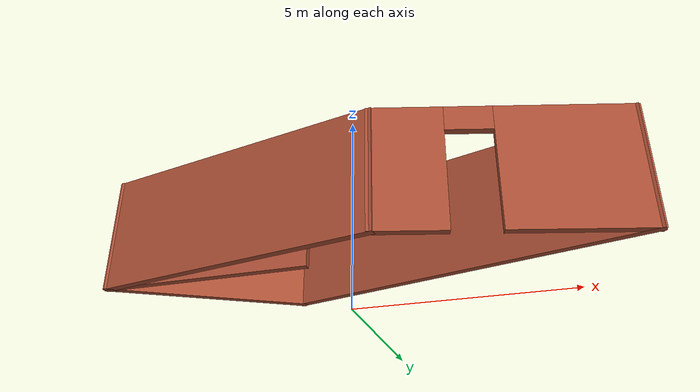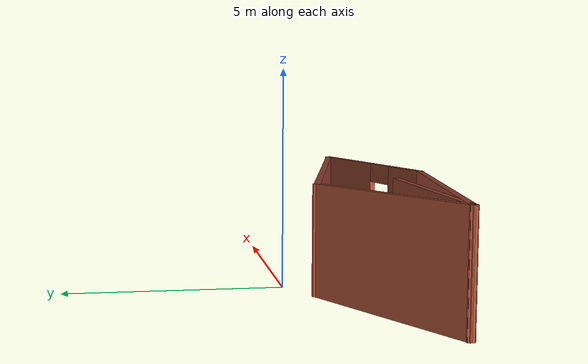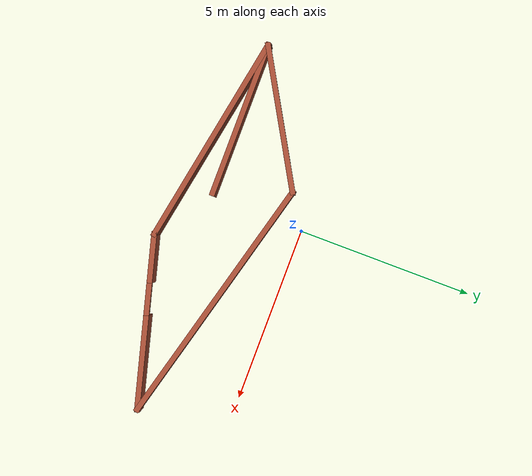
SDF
<?xml version='1.0'?>
<sdf version='1.7'>
  <model name='my_world.world'>
    <pose>0.839832 -1.92472 0 0 -0 0</pose>
    <link name='Wall_0'>
      <collision name='Wall_0_Collision'>
        <geometry>
          <box>
            <size>4.25 0.15 2.5</size>
          </box>
        </geometry>
        <pose>0 0 1.25 0 -0 0</pose>
      </collision>
      <visual name='Wall_0_Visual'>
        <pose>0 0 1.25 0 -0 0</pose>
        <geometry>
          <box>
            <size>4.25 0.15 2.5</size>
          </box>
        </geometry>
        <material>
          <script>
            <uri>file://media/materials/scripts/gazebo.material</uri>
            <name>Gazebo/Bricks</name>
          </script>
          <ambient>1 1 1 1</ambient>
        </material>
        <meta>
          <layer>0</layer>
        </meta>
      </visual>
      <pose>-3.54448 0.299724 0 0 -0 0.523599</pose>
    </link>
    <link name='Wall_1'>
      <collision name='Wall_1_Collision'>
        <geometry>
          <box>
            <size>7.5 0.15 2.5</size>
          </box>
        </geometry>
        <pose>0 0 1.25 0 -0 0</pose>
      </collision>
      <visual name='Wall_1_Visual'>
        <pose>0 0 1.25 0 -0 0</pose>
        <geometry>
          <box>
            <size>7.5 0.15 2.5</size>
          </box>
        </geometry>
        <material>
          <script>
            <uri>file://media/materials/scripts/gazebo.material</uri>
            <name>Gazebo/Bricks</name>
          </script>
          <ambient>1 1 1 1</ambient>
        </material>
        <meta>
          <layer>0</layer>
        </meta>
      </visual>
      <pose>1.78065 0.373564 0 0 -0 -0.261799</pose>
    </link>
    <link name='Wall_2'>
      <pose>2.98806 -1.20523 0 0 -0 -2.87979</pose>
      <visual name='Wall_2_Visual_0'>
        <pose>-1.16458 0 1.25 0 -0 0</pose>
        <geometry>
          <box>
            <size>2.67083 0.15 2.5</size>
          </box>
        </geometry>
        <material>
          <script>
            <uri>file://media/materials/scripts/gazebo.material</uri>
            <name>Gazebo/Bricks</name>
          </script>
          <ambient>1 1 1 1</ambient>
        </material>
        <meta>
          <layer>0</layer>
        </meta>
      </visual>
      <collision name='Wall_2_Collision_0'>
        <geometry>
          <box>
            <size>2.67083 0.15 2.5</size>
          </box>
        </geometry>
        <pose>-1.16458 0 1.25 0 -0 0</pose>
      </collision>
      <visual name='Wall_2_Visual_1'>
        <pose>1.78542 0 1.25 0 -0 0</pose>
        <geometry>
          <box>
            <size>1.42917 0.15 2.5</size>
          </box>
        </geometry>
        <material>
          <script>
            <uri>file://media/materials/scripts/gazebo.material</uri>
            <name>Gazebo/Bricks</name>
          </script>
          <ambient>1 1 1 1</ambient>
        </material>
        <meta>
          <layer>0</layer>
        </meta>
      </visual>
      <collision name='Wall_2_Collision_1'>
        <geometry>
          <box>
            <size>1.42917 0.15 2.5</size>
          </box>
        </geometry>
        <pose>1.78542 0 1.25 0 -0 0</pose>
      </collision>
      <visual name='Wall_2_Visual_2'>
        <pose>0.620833 0 2.25 0 -0 0</pose>
        <geometry>
          <box>
            <size>0.9 0.15 0.5</size>
          </box>
        </geometry>
        <material>
          <script>
            <uri>file://media/materials/scripts/gazebo.material</uri>
            <name>Gazebo/Bricks</name>
          </script>
          <ambient>1 1 1 1</ambient>
        </material>
        <meta>
          <layer>0</layer>
        </meta>
      </visual>
      <collision name='Wall_2_Collision_2'>
        <geometry>
          <box>
            <size>0.9 0.15 0.5</size>
          </box>
        </geometry>
        <pose>0.620833 0 2.25 0 -0 0</pose>
      </collision>
    </link>
    <link name='Wall_3'>
      <collision name='Wall_3_Collision'>
        <geometry>
          <box>
            <size>6.21747 0.15 2.5</size>
          </box>
        </geometry>
        <pose>0 0 1.25 0 -0 0</pose>
      </collision>
      <visual name='Wall_3_Visual'>
        <pose>0 0 1.25 0 -0 0</pose>
        <geometry>
          <box>
            <size>6.21747 0.15 2.5</size>
          </box>
        </geometry>
        <material>
          <script>
            <uri>file://media/materials/scripts/gazebo.material</uri>
            <name>Gazebo/Bricks</name>
          </script>
          <ambient>1 1 1 1</ambient>
        </material>
        <meta>
          <layer>0</layer>
        </meta>
      </visual>
      <pose>-2.33707 -1.27907 0 0 -0 2.95802</pose>
    </link>
    <link name='Wall_4'>
      <collision name='Wall_4_Collision'>
        <geometry>
          <box>
            <size>4.5 0.15 2.5</size>
          </box>
        </geometry>
        <pose>0 0 1.25 0 -0 0</pose>
      </collision>
      <visual name='Wall_4_Visual'>
        <pose>0 0 1.25 0 -0 0</pose>
        <geometry>
          <box>
            <size>4.5 0.15 2.5</size>
          </box>
        </geometry>
        <material>
          <script>
            <uri>file://media/materials/scripts/gazebo.material</uri>
            <name>Gazebo/Bricks</name>
          </script>
          <ambient>1 1 1 1</ambient>
        </material>
        <meta>
          <layer>0</layer>
        </meta>
      </visual>
      <pose>-3.14483 -0.725276 0 0 -0 0</pose>
    </link>
    <static>1</static>
  </model>
</sdf>
